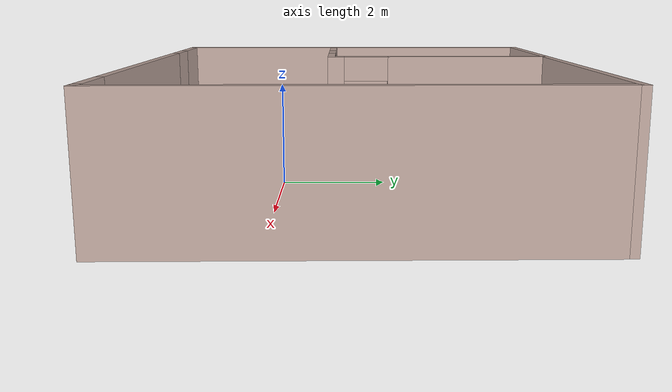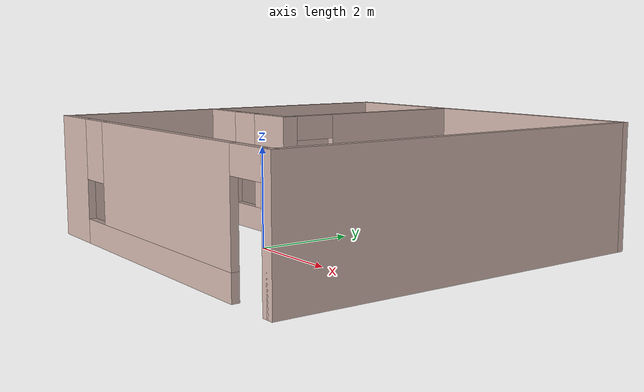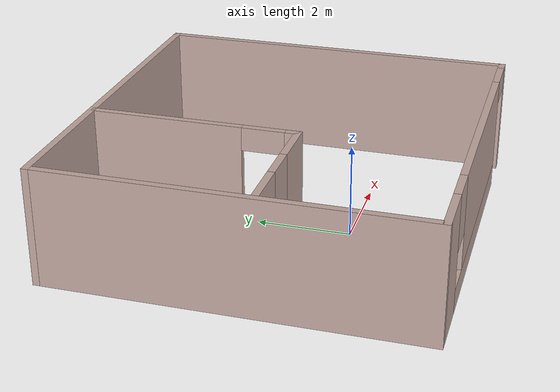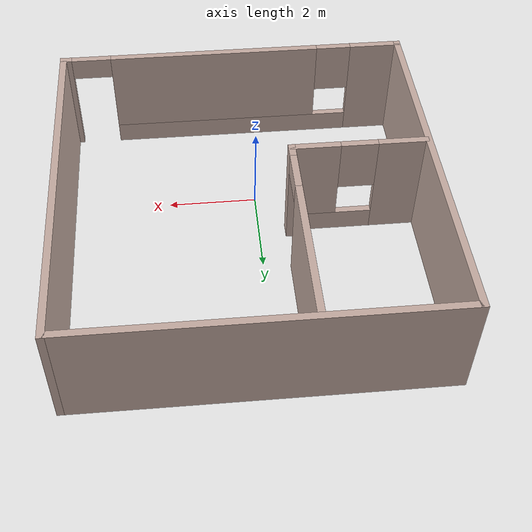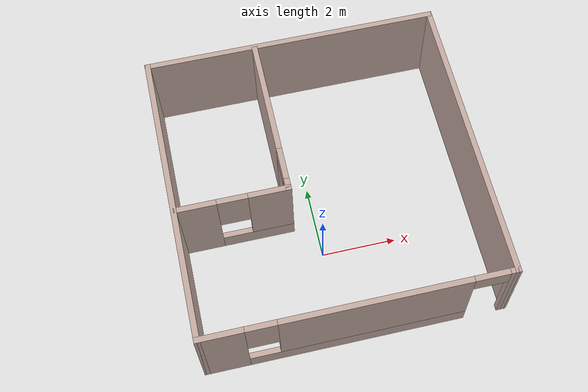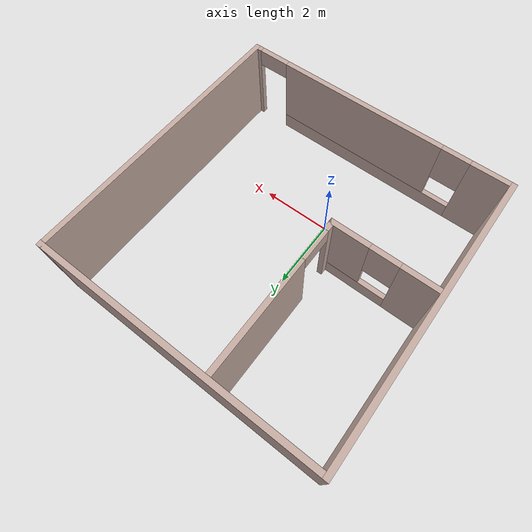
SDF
<?xml version='1.0'?>
<sdf version='1.6'>
  <model name='model'>
    <pose frame=''>0.334 1.4475 0 0 -0 0</pose>
    <link name='Wall_1'>
      <collision name='Wall_1_Collision'>
        <geometry>
          <box>
            <size>8 0.15 2.5</size>
          </box>
        </geometry>
        <pose frame=''>0 0 1.25 0 -0 0</pose>
      </collision>
      <visual name='Wall_1_Visual'>
        <pose frame=''>0 0 1.25 0 -0 0</pose>
        <geometry>
          <box>
            <size>8 0.15 2.5</size>
          </box>
        </geometry>
        <material>
          <script>
            <uri>file://media/materials/scripts/gazebo.material</uri>
            <name>Gazebo/Grey</name>
          </script>
          <ambient>0.760784 0.662745 0.627451 1</ambient>
        </material>
        <meta>
          <layer>0</layer>
        </meta>
      </visual>
      <pose frame=''>-3.925 0 0 0 0 -1.5708</pose>
    </link>
    <link name='Wall_2'>
      <pose frame=''>0 -3.925 0 0 -0 0</pose>
      <visual name='Wall_2_Visual_0'>
        <pose frame=''>-3.39988 0 1.25 0 -0 0</pose>
        <geometry>
          <box>
            <size>1.20024 0.15 2.5</size>
          </box>
        </geometry>
        <material>
          <script>
            <uri>file://media/materials/scripts/gazebo.material</uri>
            <name>Gazebo/Grey</name>
          </script>
          <ambient>0.760784 0.662745 0.627451 1</ambient>
        </material>
        <meta>
          <layer>0</layer>
        </meta>
      </visual>
      <collision name='Wall_2_Collision_0'>
        <geometry>
          <box>
            <size>1.20024 0.15 2.5</size>
          </box>
        </geometry>
        <pose frame=''>-3.39988 0 1.25 0 -0 0</pose>
      </collision>
      <visual name='Wall_2_Visual_1'>
        <pose frame=''>3.86822 0 1.25 0 -0 0</pose>
        <geometry>
          <box>
            <size>0.26356 0.15 2.5</size>
          </box>
        </geometry>
        <material>
          <script>
            <uri>file://media/materials/scripts/gazebo.material</uri>
            <name>Gazebo/Grey</name>
          </script>
          <ambient>0.760784 0.662745 0.627451 1</ambient>
        </material>
        <meta>
          <layer>0</layer>
        </meta>
      </visual>
      <collision name='Wall_2_Collision_1'>
        <geometry>
          <box>
            <size>0.26356 0.15 2.5</size>
          </box>
        </geometry>
        <pose frame=''>3.86822 0 1.25 0 -0 0</pose>
      </collision>
      <visual name='Wall_2_Visual_2'>
        <pose frame=''>0.01834 0 0.25 0 -0 0</pose>
        <geometry>
          <box>
            <size>5.6362 0.15 0.5</size>
          </box>
        </geometry>
        <material>
          <script>
            <uri>file://media/materials/scripts/gazebo.material</uri>
            <name>Gazebo/Grey</name>
          </script>
          <ambient>0.760784 0.662745 0.627451 1</ambient>
        </material>
        <meta>
          <layer>0</layer>
        </meta>
      </visual>
      <collision name='Wall_2_Collision_2'>
        <geometry>
          <box>
            <size>5.6362 0.15 0.5</size>
          </box>
        </geometry>
        <pose frame=''>0.01834 0 0.25 0 -0 0</pose>
      </collision>
      <visual name='Wall_2_Visual_3'>
        <pose frame=''>0.41834 0 1.5 0 -0 0</pose>
        <geometry>
          <box>
            <size>4.8362 0.15 2</size>
          </box>
        </geometry>
        <material>
          <script>
            <uri>file://media/materials/scripts/gazebo.material</uri>
            <name>Gazebo/Grey</name>
          </script>
          <ambient>0.760784 0.662745 0.627451 1</ambient>
        </material>
        <meta>
          <layer>0</layer>
        </meta>
      </visual>
      <collision name='Wall_2_Collision_3'>
        <geometry>
          <box>
            <size>4.8362 0.15 2</size>
          </box>
        </geometry>
        <pose frame=''>0.41834 0 1.5 0 -0 0</pose>
      </collision>
      <visual name='Wall_2_Visual_4'>
        <pose frame=''>-2.39976 0 1.9 0 -0 0</pose>
        <geometry>
          <box>
            <size>0.8 0.15 1.2</size>
          </box>
        </geometry>
        <material>
          <script>
            <uri>file://media/materials/scripts/gazebo.material</uri>
            <name>Gazebo/Grey</name>
          </script>
          <ambient>0.760784 0.662745 0.627451 1</ambient>
        </material>
        <meta>
          <layer>0</layer>
        </meta>
      </visual>
      <collision name='Wall_2_Collision_4'>
        <geometry>
          <box>
            <size>0.8 0.15 1.2</size>
          </box>
        </geometry>
        <pose frame=''>-2.39976 0 1.9 0 -0 0</pose>
      </collision>
      <visual name='Wall_2_Visual_5'>
        <pose frame=''>3.28644 0 2.25 0 -0 0</pose>
        <geometry>
          <box>
            <size>0.9 0.15 0.5</size>
          </box>
        </geometry>
        <material>
          <script>
            <uri>file://media/materials/scripts/gazebo.material</uri>
            <name>Gazebo/Grey</name>
          </script>
          <ambient>0.760784 0.662745 0.627451 1</ambient>
        </material>
        <meta>
          <layer>0</layer>
        </meta>
      </visual>
      <collision name='Wall_2_Collision_5'>
        <geometry>
          <box>
            <size>0.9 0.15 0.5</size>
          </box>
        </geometry>
        <pose frame=''>3.28644 0 2.25 0 -0 0</pose>
      </collision>
    </link>
    <link name='Wall_3'>
      <collision name='Wall_3_Collision'>
        <geometry>
          <box>
            <size>8 0.15 2.5</size>
          </box>
        </geometry>
        <pose frame=''>0 0 1.25 0 -0 0</pose>
      </collision>
      <visual name='Wall_3_Visual'>
        <pose frame=''>0 0 1.25 0 -0 0</pose>
        <geometry>
          <box>
            <size>8 0.15 2.5</size>
          </box>
        </geometry>
        <material>
          <script>
            <uri>file://media/materials/scripts/gazebo.material</uri>
            <name>Gazebo/Grey</name>
          </script>
          <ambient>0.760784 0.662745 0.627451 1</ambient>
        </material>
        <meta>
          <layer>0</layer>
        </meta>
      </visual>
      <pose frame=''>3.925 0 0 0 -0 1.5708</pose>
    </link>
    <link name='Wall_4'>
      <collision name='Wall_4_Collision'>
        <geometry>
          <box>
            <size>8 0.15 2.5</size>
          </box>
        </geometry>
        <pose frame=''>0 0 1.25 0 -0 0</pose>
      </collision>
      <visual name='Wall_4_Visual'>
        <pose frame=''>0 0 1.25 0 -0 0</pose>
        <geometry>
          <box>
            <size>8 0.15 2.5</size>
          </box>
        </geometry>
        <material>
          <script>
            <uri>file://media/materials/scripts/gazebo.material</uri>
            <name>Gazebo/Grey</name>
          </script>
          <ambient>0.760784 0.662745 0.627451 1</ambient>
        </material>
        <meta>
          <layer>0</layer>
        </meta>
      </visual>
      <pose frame=''>0 3.925 0 0 -0 3.14159</pose>
    </link>
    <link name='Wall_6'>
      <pose frame=''>-2.42656 -0.496144 0 0 -0 0</pose>
      <visual name='Wall_6_Visual_0'>
        <pose frame=''>-0.959286 0 1.25 0 -0 0</pose>
        <geometry>
          <box>
            <size>1.08143 0.15 2.5</size>
          </box>
        </geometry>
        <material>
          <script>
            <uri>file://media/materials/scripts/gazebo.material</uri>
            <name>Gazebo/Grey</name>
          </script>
          <ambient>0.760784 0.662745 0.627451 1</ambient>
        </material>
        <meta>
          <layer>0</layer>
        </meta>
      </visual>
      <collision name='Wall_6_Collision_0'>
        <geometry>
          <box>
            <size>1.08143 0.15 2.5</size>
          </box>
        </geometry>
        <pose frame=''>-0.959286 0 1.25 0 -0 0</pose>
      </collision>
      <visual name='Wall_6_Visual_1'>
        <pose frame=''>0.540714 0 0.25 0 -0 0</pose>
        <geometry>
          <box>
            <size>1.91857 0.15 0.5</size>
          </box>
        </geometry>
        <material>
          <script>
            <uri>file://media/materials/scripts/gazebo.material</uri>
            <name>Gazebo/Grey</name>
          </script>
          <ambient>0.760784 0.662745 0.627451 1</ambient>
        </material>
        <meta>
          <layer>0</layer>
        </meta>
      </visual>
      <collision name='Wall_6_Collision_1'>
        <geometry>
          <box>
            <size>1.91857 0.15 0.5</size>
          </box>
        </geometry>
        <pose frame=''>0.540714 0 0.25 0 -0 0</pose>
      </collision>
      <visual name='Wall_6_Visual_2'>
        <pose frame=''>0.940714 0 1.5 0 -0 0</pose>
        <geometry>
          <box>
            <size>1.11857 0.15 2</size>
          </box>
        </geometry>
        <material>
          <script>
            <uri>file://media/materials/scripts/gazebo.material</uri>
            <name>Gazebo/Grey</name>
          </script>
          <ambient>0.760784 0.662745 0.627451 1</ambient>
        </material>
        <meta>
          <layer>0</layer>
        </meta>
      </visual>
      <collision name='Wall_6_Collision_2'>
        <geometry>
          <box>
            <size>1.11857 0.15 2</size>
          </box>
        </geometry>
        <pose frame=''>0.940714 0 1.5 0 -0 0</pose>
      </collision>
      <visual name='Wall_6_Visual_3'>
        <pose frame=''>-0.018573 0 1.9 0 -0 0</pose>
        <geometry>
          <box>
            <size>0.8 0.15 1.2</size>
          </box>
        </geometry>
        <material>
          <script>
            <uri>file://media/materials/scripts/gazebo.material</uri>
            <name>Gazebo/Grey</name>
          </script>
          <ambient>0.760784 0.662745 0.627451 1</ambient>
        </material>
        <meta>
          <layer>0</layer>
        </meta>
      </visual>
      <collision name='Wall_6_Collision_3'>
        <geometry>
          <box>
            <size>0.8 0.15 1.2</size>
          </box>
        </geometry>
        <pose frame=''>-0.018573 0 1.9 0 -0 0</pose>
      </collision>
    </link>
    <link name='Wall_7'>
      <pose frame=''>-1.00156 1.67886 0 0 -0 1.5708</pose>
      <visual name='Wall_7_Visual_0'>
        <pose frame=''>-2.08211 0 1.25 0 -0 0</pose>
        <geometry>
          <box>
            <size>0.335775 0.15 2.5</size>
          </box>
        </geometry>
        <material>
          <script>
            <uri>file://media/materials/scripts/gazebo.material</uri>
            <name>Gazebo/Grey</name>
          </script>
          <ambient>0.760784 0.662745 0.627451 1</ambient>
        </material>
        <meta>
          <layer>0</layer>
        </meta>
      </visual>
      <collision name='Wall_7_Collision_0'>
        <geometry>
          <box>
            <size>0.335775 0.15 2.5</size>
          </box>
        </geometry>
        <pose frame=''>-2.08211 0 1.25 0 -0 0</pose>
      </collision>
      <visual name='Wall_7_Visual_1'>
        <pose frame=''>0.617888 0 1.25 0 -0 0</pose>
        <geometry>
          <box>
            <size>3.26423 0.15 2.5</size>
          </box>
        </geometry>
        <material>
          <script>
            <uri>file://media/materials/scripts/gazebo.material</uri>
            <name>Gazebo/Grey</name>
          </script>
          <ambient>0.760784 0.662745 0.627451 1</ambient>
        </material>
        <meta>
          <layer>0</layer>
        </meta>
      </visual>
      <collision name='Wall_7_Collision_1'>
        <geometry>
          <box>
            <size>3.26423 0.15 2.5</size>
          </box>
        </geometry>
        <pose frame=''>0.617888 0 1.25 0 -0 0</pose>
      </collision>
      <visual name='Wall_7_Visual_2'>
        <pose frame=''>-1.46423 0 2.25 0 -0 0</pose>
        <geometry>
          <box>
            <size>0.9 0.15 0.5</size>
          </box>
        </geometry>
        <material>
          <script>
            <uri>file://media/materials/scripts/gazebo.material</uri>
            <name>Gazebo/Grey</name>
          </script>
          <ambient>0.760784 0.662745 0.627451 1</ambient>
        </material>
        <meta>
          <layer>0</layer>
        </meta>
      </visual>
      <collision name='Wall_7_Collision_2'>
        <geometry>
          <box>
            <size>0.9 0.15 0.5</size>
          </box>
        </geometry>
        <pose frame=''>-1.46423 0 2.25 0 -0 0</pose>
      </collision>
    </link>
    <static>1</static>
  </model>
</sdf>
